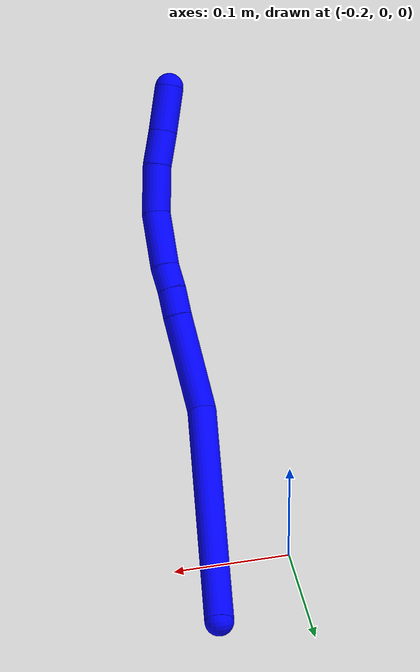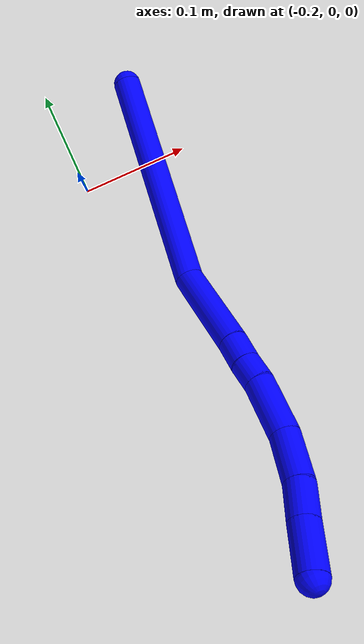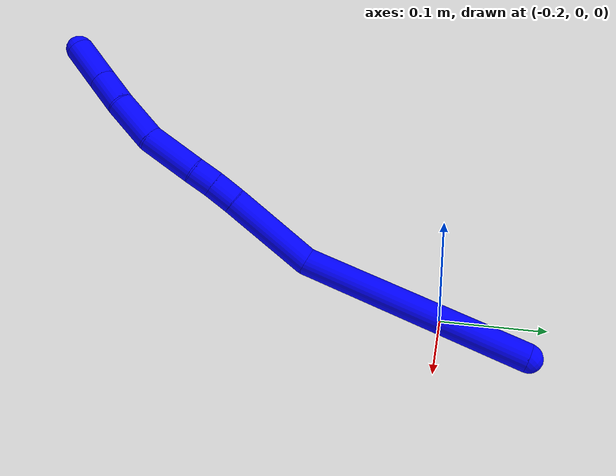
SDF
<sdf version="1.7">
 <world name="default">
  <plugin name="TubeGeneratorPlugin" filename="libtube_generator_plugin.so"/>
  <model name="photoneo_s_sensor">
   <static>1</static>
   <pose>0 0 2 1.57079 1.57079 3.14159</pose>
   <link name="link">
    <inertial><mass>0.1</mass></inertial>
    <sensor name="sensor" type="depth">
     <update_rate>30</update_rate>
     <camera>
      <horizontal_fov>1.22</horizontal_fov>
      <image><width>1920</width><height>1200</height><format>B8G8R8</format></image>
      <clip><near>0.1</near><far>4</far></clip>
      <depth_camera><output>points</output></depth_camera>
     </camera>
     <plugin name="camera_plugin" filename="libgazebo_ros_depth_camera.so">
      <baseline>0.2</baseline>
      <alwaysOn>1</alwaysOn>
      <updateRate>0.0</updateRate>
      <cameraName>camera_ir</cameraName>
      <imageTopicName>/camera/color/image_raw</imageTopicName>
      <cameraInfoTopicName>/camera/color/camera_info</cameraInfoTopicName>
      <depthImageTopicName>/camera/depth/image_raw</depthImageTopicName>
      <depthImageCameraInfoTopicName>/camera/depth/camera_info</depthImageCameraInfoTopicName>
      <pointCloudTopicName>/camera/depth/points</pointCloudTopicName>
      <frameName>fr_optical</frameName>
      <pointCloudCutoff>0.1</pointCloudCutoff>
      <pointCloudCutoffMax>2.0</pointCloudCutoffMax>
      <distortionK1>0</distortionK1>
      <distortionK2>0</distortionK2>
      <distortionK3>0</distortionK3>
      <distortionT1>0</distortionT1>
      <distortionT2>0</distortionT2>
      <CxPrime>0</CxPrime>
      <Cx>0</Cx>
      <Cy>0</Cy>
      <focalLength>0</focalLength>
      <hackBaseline>0</hackBaseline>
     </plugin>
    </sensor>
   </link>
  </model>
  <gravity>0 0 -9.8</gravity>
  <magnetic_field>6e-06 2.3e-05 -4.2e-05</magnetic_field>
  <atmosphere type="adiabatic"/>
  <physics name="default_physics" default="0" type="ode">
   <max_step_size>0.003</max_step_size>
   <real_time_factor>1</real_time_factor>
   <real_time_update_rate>1000</real_time_update_rate>
   <max_contacts>10000</max_contacts>
   <ode>
    <solver>
     <type>quick</type>
     <iters>100</iters>
     <sor>1.3</sor>
     <use_dynamic_moi_rescaling>0</use_dynamic_moi_rescaling>
    </solver>
    <constraints>
     <contact_max_correcting_vel>0</contact_max_correcting_vel>
     <contact_surface_layer>0.001</contact_surface_layer>
     <cfm>0</cfm>
     <erp>0.2</erp>
    </constraints>
   </ode>
  </physics>
  <scene><ambient>0.4 0.4 0.4 1</ambient><background>0.7 0.7 0.7 1</background><shadows>0</shadows></scene>
  <audio><device>default</device></audio>
  <spherical_coordinates>
   <surface_model>EARTH_WGS84</surface_model>
   <latitude_deg>0</latitude_deg>
   <longitude_deg>0</longitude_deg>
   <elevation>0</elevation>
   <heading_deg>0</heading_deg>
  </spherical_coordinates>
  <model name="bin">
   <static>1</static>
   <link name="bottom">
    <collision name="collision-bottom">
     <pose>0 0 -0.01 0 -0 0</pose>
     <geometry><box><size>0.8 0.6 0.02</size></box></geometry>
     <surface>
      <friction><ode><mu>100</mu><mu2>100</mu2></ode></friction>
      <contact><collide_bitmask>65535</collide_bitmask></contact>
     </surface>
    </collision>
   </link>
   <link name="west_wall">
    <collision name="collision-west_wall">
     <pose>-0.41 0 0.1 0 -0 0</pose>
     <geometry><box><size>0.02 0.6 0.2</size></box></geometry>
     <surface>
      <friction><ode><mu>100</mu><mu2>100</mu2></ode></friction>
      <contact><collide_bitmask>65535</collide_bitmask></contact>
     </surface>
    </collision>
   </link>
   <link name="east_wall">
    <collision name="collision-east_wall">
     <pose>0.41 0 0.1 0 -0 0</pose>
     <geometry><box><size>0.02 0.6 0.2</size></box></geometry>
     <surface>
      <friction><ode><mu>100</mu><mu2>100</mu2></ode></friction>
      <contact><collide_bitmask>65535</collide_bitmask></contact>
     </surface>
    </collision>
   </link>
   <link name="south_wall">
    <collision name="collision-south_wall">
     <pose>0 -0.31 0.1 0 -0 0</pose>
     <geometry><box><size>0.8 0.02 0.2</size></box></geometry>
     <surface>
      <friction><ode><mu>100</mu><mu2>100</mu2></ode></friction>
      <contact><collide_bitmask>65535</collide_bitmask></contact>
     </surface>
    </collision>
   </link>
   <link name="north_wall">
    <collision name="collision-north_wall">
     <pose>0 0.31 0.1 0 -0 0</pose>
     <geometry><box><size>0.8 0.02 0.2</size></box></geometry>
     <surface>
      <friction><ode><mu>100</mu><mu2>100</mu2></ode></friction>
      <contact><collide_bitmask>65535</collide_bitmask></contact>
     </surface>
    </collision>
   </link>
  </model>
  <model name="1">
   <static>0</static>
   <link name="1">
    <collision name="collision-cylinder-e_1_1_4">
     <pose>-0.006301 -0.051033 0.090056 0.515558 -0.060798 -0.016034</pose>
     <geometry><cylinder><radius>0.0125</radius><length>0.207404</length></cylinder></geometry>
     <surface>
      <friction><ode><mu>1.16</mu><mu2>1.16</mu2><slip1>0</slip1><slip2>0</slip2></ode></friction>
      <contact><ode><kp>1e+06</kp><kd>1</kd><max_vel>0</max_vel><min_depth>0.001</min_depth></ode></contact>
     </surface>
    </collision>
    <visual name="visual-cylinder-e_1_1_4">
     <pose>-0.006301 -0.051033 0.090056 0.515558 -0.060798 -0.016034</pose>
     <geometry><cylinder><radius>0.0125</radius><length>0.207404</length></cylinder></geometry>
     <material><ambient>0 0 1 1</ambient></material>
    </visual>
    <collision name="collision-cylinder-e_2_4_5">
     <pose>-0.008093 -0.105107 0.222354 0.071881 0.106069 0.003817</pose>
     <geometry><cylinder><radius>0.0125</radius><length>0.085182</length></cylinder></geometry>
     <surface>
      <friction><ode><mu>1.16</mu><mu2>1.16</mu2><slip1>0</slip1><slip2>0</slip2></ode></friction>
      <contact><ode><kp>1e+06</kp><kd>1</kd><max_vel>0</max_vel><min_depth>0.001</min_depth></ode></contact>
     </surface>
    </collision>
    <visual name="visual-cylinder-e_2_4_5">
     <pose>-0.008093 -0.105107 0.222354 0.071881 0.106069 0.003817</pose>
     <geometry><cylinder><radius>0.0125</radius><length>0.085182</length></cylinder></geometry>
     <material><ambient>0 0 1 1</ambient></material>
    </visual>
    <collision name="collision-cylinder-e_3_5_6">
     <pose>-0.002828 -0.109705 0.276303 0.132169 0.063881 0.004229</pose>
     <geometry><cylinder><radius>0.0125</radius><length>0.023668</length></cylinder></geometry>
     <surface>
      <friction><ode><mu>1.16</mu><mu2>1.16</mu2><slip1>0</slip1><slip2>0</slip2></ode></friction>
      <contact><ode><kp>1e+06</kp><kd>1</kd><max_vel>0</max_vel><min_depth>0.001</min_depth></ode></contact>
     </surface>
    </collision>
    <visual name="visual-cylinder-e_3_5_6">
     <pose>-0.002828 -0.109705 0.276303 0.132169 0.063881 0.004229</pose>
     <geometry><cylinder><radius>0.0125</radius><length>0.023668</length></cylinder></geometry>
     <material><ambient>0 0 1 1</ambient></material>
    </visual>
    <collision name="collision-cylinder-e_4_6_7">
     <pose>-0.000566 -0.112846 0.29848 0.15019 0.141317 0.01065</pose>
     <geometry><cylinder><radius>0.0125</radius><length>0.021393</length></cylinder></geometry>
     <surface>
      <friction><ode><mu>1.16</mu><mu2>1.16</mu2><slip1>0</slip1><slip2>0</slip2></ode></friction>
      <contact><ode><kp>1e+06</kp><kd>1</kd><max_vel>0</max_vel><min_depth>0.001</min_depth></ode></contact>
     </surface>
    </collision>
    <visual name="visual-cylinder-e_4_6_7">
     <pose>-0.000566 -0.112846 0.29848 0.15019 0.141317 0.01065</pose>
     <geometry><cylinder><radius>0.0125</radius><length>0.021393</length></cylinder></geometry>
     <material><ambient>0 0 1 1</ambient></material>
    </visual>
    <collision name="collision-cylinder-e_5_7_8">
     <pose>0.001274 -0.119516 0.332902 0.209236 0.013629 0.001431</pose>
     <geometry><cylinder><radius>0.0125</radius><length>0.048976</length></cylinder></geometry>
     <surface>
      <friction><ode><mu>1.16</mu><mu2>1.16</mu2><slip1>0</slip1><slip2>0</slip2></ode></friction>
      <contact><ode><kp>1e+06</kp><kd>1</kd><max_vel>0</max_vel><min_depth>0.001</min_depth></ode></contact>
     </surface>
    </collision>
    <visual name="visual-cylinder-e_5_7_8">
     <pose>0.001274 -0.119516 0.332902 0.209236 0.013629 0.001431</pose>
     <geometry><cylinder><radius>0.0125</radius><length>0.048976</length></cylinder></geometry>
     <material><ambient>0 0 1 1</ambient></material>
    </visual>
    <collision name="collision-cylinder-e_6_8_9">
     <pose>-0.001802 -0.125817 0.377774 0.057991 -0.161304 -0.004689</pose>
     <geometry><cylinder><radius>0.0125</radius><length>0.042463</length></cylinder></geometry>
     <surface>
      <friction><ode><mu>1.16</mu><mu2>1.16</mu2><slip1>0</slip1><slip2>0</slip2></ode></friction>
      <contact><ode><kp>1e+06</kp><kd>1</kd><max_vel>0</max_vel><min_depth>0.001</min_depth></ode></contact>
     </surface>
    </collision>
    <visual name="visual-cylinder-e_6_8_9">
     <pose>-0.001802 -0.125817 0.377774 0.057991 -0.161304 -0.004689</pose>
     <geometry><cylinder><radius>0.0125</radius><length>0.042463</length></cylinder></geometry>
     <material><ambient>0 0 1 1</ambient></material>
    </visual>
    <collision name="collision-cylinder-e_7_9_10">
     <pose>-0.009829 -0.128374 0.413094 0.092965 -0.309065 -0.014492</pose>
     <geometry><cylinder><radius>0.0125</radius><length>0.030362</length></cylinder></geometry>
     <surface>
      <friction><ode><mu>1.16</mu><mu2>1.16</mu2><slip1>0</slip1><slip2>0</slip2></ode></friction>
      <contact><ode><kp>1e+06</kp><kd>1</kd><max_vel>0</max_vel><min_depth>0.001</min_depth></ode></contact>
     </surface>
    </collision>
    <visual name="visual-cylinder-e_7_9_10">
     <pose>-0.009829 -0.128374 0.413094 0.092965 -0.309065 -0.014492</pose>
     <geometry><cylinder><radius>0.0125</radius><length>0.030362</length></cylinder></geometry>
     <material><ambient>0 0 1 1</ambient></material>
    </visual>
    <collision name="collision-cylinder-e_8_10_2">
     <pose>-0.020125 -0.131026 0.446915 0.067334 -0.283811 -0.009623</pose>
     <geometry><cylinder><radius>0.0125</radius><length>0.040553</length></cylinder></geometry>
     <surface>
      <friction><ode><mu>1.16</mu><mu2>1.16</mu2><slip1>0</slip1><slip2>0</slip2></ode></friction>
      <contact><ode><kp>1e+06</kp><kd>1</kd><max_vel>0</max_vel><min_depth>0.001</min_depth></ode></contact>
     </surface>
    </collision>
    <visual name="visual-cylinder-e_8_10_2">
     <pose>-0.020125 -0.131026 0.446915 0.067334 -0.283811 -0.009623</pose>
     <geometry><cylinder><radius>0.0125</radius><length>0.040553</length></cylinder></geometry>
     <material><ambient>0 0 1 1</ambient></material>
    </visual>
    <collision name="collision-sphere-2">
     <pose>-0.025803 -0.132336 0.466336 0 -0 0</pose>
     <geometry><sphere><radius>0.0125</radius></sphere></geometry>
     <surface>
      <friction><ode><mu>1.16</mu><mu2>1.16</mu2><slip1>0</slip1><slip2>0</slip2></ode></friction>
      <contact><ode><kp>1e+06</kp><kd>1</kd><max_vel>0</max_vel><min_depth>0.001</min_depth></ode></contact>
     </surface>
    </collision>
    <visual name="visual-sphere-2">
     <pose>-0.025803 -0.132336 0.466336 0 -0 0</pose>
     <geometry><sphere><radius>0.0125</radius></sphere></geometry>
     <material><ambient>0 0 1 1</ambient></material>
    </visual>
    <collision name="collision-sphere-10">
     <pose>-0.014447 -0.129716 0.427493 0 -0 0</pose>
     <geometry><sphere><radius>0.0125</radius></sphere></geometry>
     <surface>
      <friction><ode><mu>1.16</mu><mu2>1.16</mu2><slip1>0</slip1><slip2>0</slip2></ode></friction>
      <contact><ode><kp>1e+06</kp><kd>1</kd><max_vel>0</max_vel><min_depth>0.001</min_depth></ode></contact>
     </surface>
    </collision>
    <visual name="visual-sphere-10">
     <pose>-0.014447 -0.129716 0.427493 0 -0 0</pose>
     <geometry><sphere><radius>0.0125</radius></sphere></geometry>
     <material><ambient>0 0 1 1</ambient></material>
    </visual>
    <collision name="collision-sphere-9">
     <pose>-0.005212 -0.127031 0.398695 0 -0 0</pose>
     <geometry><sphere><radius>0.0125</radius></sphere></geometry>
     <surface>
      <friction><ode><mu>1.16</mu><mu2>1.16</mu2><slip1>0</slip1><slip2>0</slip2></ode></friction>
      <contact><ode><kp>1e+06</kp><kd>1</kd><max_vel>0</max_vel><min_depth>0.001</min_depth></ode></contact>
     </surface>
    </collision>
    <visual name="visual-sphere-9">
     <pose>-0.005212 -0.127031 0.398695 0 -0 0</pose>
     <geometry><sphere><radius>0.0125</radius></sphere></geometry>
     <material><ambient>0 0 1 1</ambient></material>
    </visual>
    <collision name="collision-sphere-4">
     <pose>-0.012602 -0.102065 0.180111 0 -0 0</pose>
     <geometry><sphere><radius>0.0125</radius></sphere></geometry>
     <surface>
      <friction><ode><mu>1.16</mu><mu2>1.16</mu2><slip1>0</slip1><slip2>0</slip2></ode></friction>
      <contact><ode><kp>1e+06</kp><kd>1</kd><max_vel>0</max_vel><min_depth>0.001</min_depth></ode></contact>
     </surface>
    </collision>
    <visual name="visual-sphere-4">
     <pose>-0.012602 -0.102065 0.180111 0 -0 0</pose>
     <geometry><sphere><radius>0.0125</radius></sphere></geometry>
     <material><ambient>0 0 1 1</ambient></material>
    </visual>
    <collision name="collision-sphere-1">
     <geometry><sphere><radius>0.0125</radius></sphere></geometry>
     <surface>
      <friction><ode><mu>1.16</mu><mu2>1.16</mu2><slip1>0</slip1><slip2>0</slip2></ode></friction>
      <contact><ode><kp>1e+06</kp><kd>1</kd><max_vel>0</max_vel><min_depth>0.001</min_depth></ode></contact>
     </surface>
    </collision>
    <visual name="visual-sphere-1">
     <geometry><sphere><radius>0.0125</radius></sphere></geometry>
     <material><ambient>0 0 1 1</ambient></material>
    </visual>
    <collision name="collision-sphere-8">
     <pose>0.001608 -0.124602 0.356854 0 -0 0</pose>
     <geometry><sphere><radius>0.0125</radius></sphere></geometry>
     <surface>
      <friction><ode><mu>1.16</mu><mu2>1.16</mu2><slip1>0</slip1><slip2>0</slip2></ode></friction>
      <contact><ode><kp>1e+06</kp><kd>1</kd><max_vel>0</max_vel><min_depth>0.001</min_depth></ode></contact>
     </surface>
    </collision>
    <visual name="visual-sphere-8">
     <pose>0.001608 -0.124602 0.356854 0 -0 0</pose>
     <geometry><sphere><radius>0.0125</radius></sphere></geometry>
     <material><ambient>0 0 1 1</ambient></material>
    </visual>
    <collision name="collision-sphere-5">
     <pose>-0.003584 -0.108148 0.264596 0 -0 0</pose>
     <geometry><sphere><radius>0.0125</radius></sphere></geometry>
     <surface>
      <friction><ode><mu>1.16</mu><mu2>1.16</mu2><slip1>0</slip1><slip2>0</slip2></ode></friction>
      <contact><ode><kp>1e+06</kp><kd>1</kd><max_vel>0</max_vel><min_depth>0.001</min_depth></ode></contact>
     </surface>
    </collision>
    <visual name="visual-sphere-5">
     <pose>-0.003584 -0.108148 0.264596 0 -0 0</pose>
     <geometry><sphere><radius>0.0125</radius></sphere></geometry>
     <material><ambient>0 0 1 1</ambient></material>
    </visual>
    <collision name="collision-sphere-6">
     <pose>-0.002073 -0.111261 0.28801 0 -0 0</pose>
     <geometry><sphere><radius>0.0125</radius></sphere></geometry>
     <surface>
      <friction><ode><mu>1.16</mu><mu2>1.16</mu2><slip1>0</slip1><slip2>0</slip2></ode></friction>
      <contact><ode><kp>1e+06</kp><kd>1</kd><max_vel>0</max_vel><min_depth>0.001</min_depth></ode></contact>
     </surface>
    </collision>
    <visual name="visual-sphere-6">
     <pose>-0.002073 -0.111261 0.28801 0 -0 0</pose>
     <geometry><sphere><radius>0.0125</radius></sphere></geometry>
     <material><ambient>0 0 1 1</ambient></material>
    </visual>
    <collision name="collision-sphere-7">
     <pose>0.00094 -0.11443 0.308951 0 -0 0</pose>
     <geometry><sphere><radius>0.0125</radius></sphere></geometry>
     <surface>
      <friction><ode><mu>1.16</mu><mu2>1.16</mu2><slip1>0</slip1><slip2>0</slip2></ode></friction>
      <contact><ode><kp>1e+06</kp><kd>1</kd><max_vel>0</max_vel><min_depth>0.001</min_depth></ode></contact>
     </surface>
    </collision>
    <visual name="visual-sphere-7">
     <pose>0.00094 -0.11443 0.308951 0 -0 0</pose>
     <geometry><sphere><radius>0.0125</radius></sphere></geometry>
     <material><ambient>0 0 1 1</ambient></material>
    </visual>
    <inertial>
     <pose>-0.006408 -0.08991 0.22711 0 -0 0</pose>
     <mass>0.5</mass>
     <inertia>
      <ixx>0.000824</ixx>
      <ixy>0</ixy>
      <ixz>0</ixz>
      <iyy>0.00072</iyy>
      <iyz>0</iyz>
      <izz>0.000458</izz>
     </inertia>
    </inertial>
   </link>
   <pose>-0.123065 0.076905 0.011499 0.770005 0.094104 -0.097457</pose>
  </model>
 </world>
</sdf>
